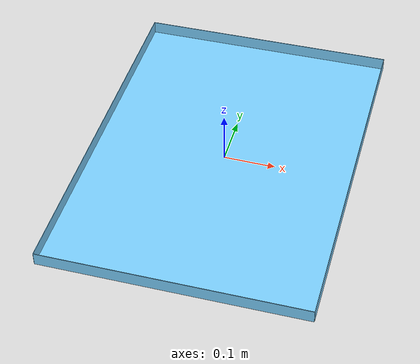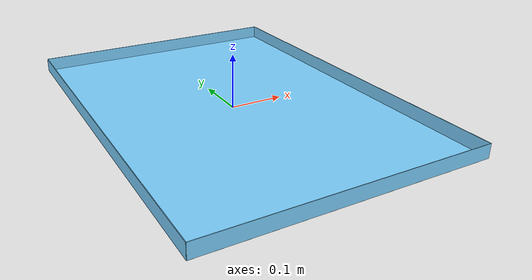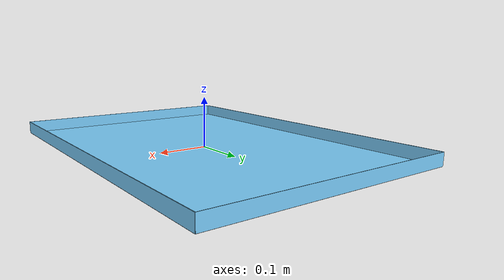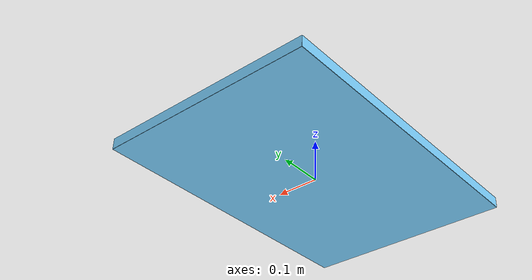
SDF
<?xml version="1.0" ?>
<sdf version="1.6">
  <model name="kit_tray">
    <static>true</static>
    <plugin name="kit_tray_plugin" filename="libROSAriacKitTrayPlugin.so">
      <contact_sensor_name>kit_tray_contact</contact_sensor_name>
      <update_rate>20</update_rate>
    </plugin>
    <link name="tray">
      <sensor name='kit_tray_contact' type='contact'>
        <update_rate>1</update_rate>
        <contact>
          <collision>tray_collision</collision>
        </contact>
      </sensor>
      <gravity>true</gravity>
      <collision name="tray_collision">
        <geometry>
          <box>
            <size>0.5 0.7 0.001</size>
          </box>
        </geometry>
      </collision>
      <collision name="tray_collision1">
        <pose>0.25 0 0.0127 0 0 0</pose>
        <geometry>
          <box>
            <size>0.001 0.7 0.0254</size>
          </box>
        </geometry>
      </collision>
      <visual name="tray_visual1">
        <pose>0.25 0 0.0127 0 0 0</pose>
        <geometry>
          <box>
            <size>0.001 0.7 0.0254</size>
          </box>
        </geometry>
        <material>
          <ambient>0.48627451 0.819607843 1 1</ambient>
          <diffuse>0.48627451 0.819607843 1 1</diffuse>
        </material>
      </visual>

      <collision name="tray_collision2">
        <pose>-0.25 0 0.0127 0 0 0</pose>
        <geometry>
          <box>
            <size>0.001 0.7 0.0254</size>
          </box>
        </geometry>
      </collision>
      <visual name="tray_visual2">
        <pose>-0.25 0 0.0127 0 0 0</pose>
        <geometry>
          <box>
            <size>0.001 0.7 0.0254</size>
          </box>
        </geometry>
        <material>
          <ambient>0.48627451 0.819607843 1 1</ambient>
          <diffuse>0.48627451 0.819607843 1 1</diffuse>
        </material>
      </visual>

      <collision name="tray_collision3">
        <pose>0 0.35 0.0127 0 0 0</pose>
        <geometry>
          <box>
            <size>0.5 0.001 0.0254</size>
          </box>
        </geometry>
      </collision>
      <visual name="tray_visual3">
        <pose>0 0.35 0.0127 0 0 0</pose>
        <geometry>
          <box>
            <size>0.5 0.001 0.0254</size>
          </box>
        </geometry>
        <material>
          <ambient>0.48627451 0.819607843 1 1</ambient>
          <diffuse>0.48627451 0.819607843 1 1</diffuse>
        </material>
      </visual>

      <collision name="tray_collision4">
        <pose>0 -0.35 0.0127 0 0 0</pose>
        <geometry>
          <box>
            <size>0.5 0.001 0.0254</size>
          </box>
        </geometry>
      </collision>
      <visual name="tray_visual4">
        <pose>0 -0.35 0.0127 0 0 0</pose>
        <geometry>
          <box>
            <size>0.5 0.001 0.0254</size>
          </box>
        </geometry>
        <material>
          <ambient>0.48627451 0.819607843 1 1</ambient>
          <diffuse>0.48627451 0.819607843 1 1</diffuse>
        </material>
      </visual>

      <visual name="visual">
        <geometry>
          <box>
            <size>0.5 0.7 0.001</size>
          </box>
        </geometry>
        <material>
          <ambient>0.48627451 0.819607843 1 1</ambient>
          <diffuse>0.48627451 0.819607843 1 1</diffuse>
        </material>
      </visual>
    </link>
    <allow_auto_disable>0</allow_auto_disable>
  </model>
</sdf>
